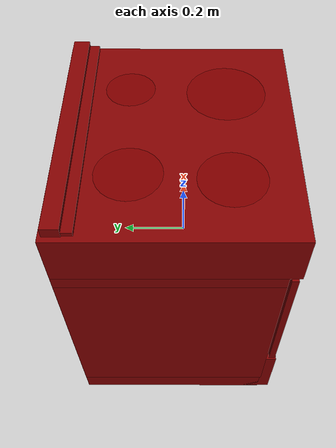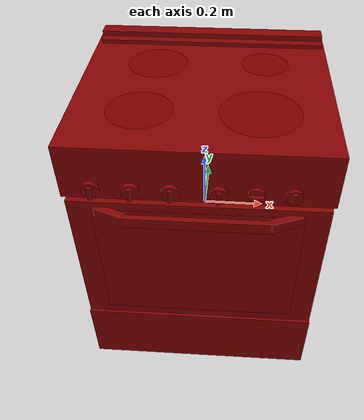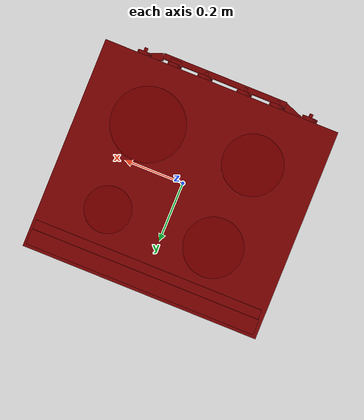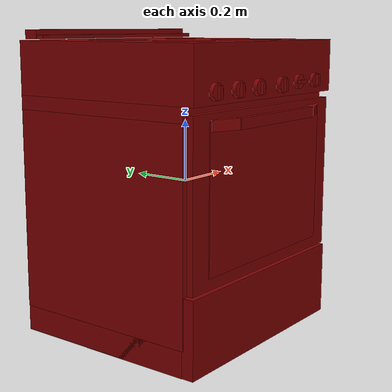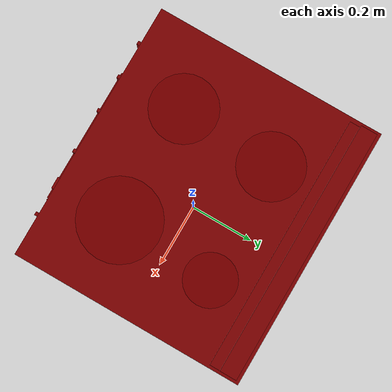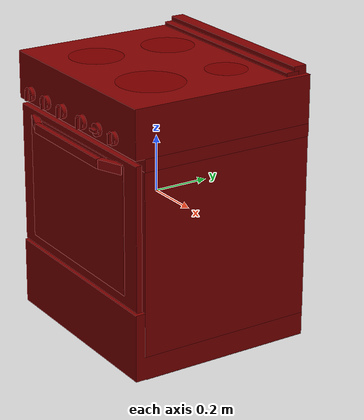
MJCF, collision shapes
<?xml version='1.0' encoding='UTF-8'?>
<mujoco model="model">
  <option timestep="0.002" gravity="0.0 0.0 -9.81"/>
  <compiler angle="radian"/>
  <asset>
    <mesh file="visuals/door.obj" name="door_vis"/>
    <mesh file="visuals/door_Clear.obj" name="door_Clear_vis"/>
    <mesh file="visuals/knob_front_left.obj" name="knob_front_left_vis"/>
    <mesh file="visuals/knob_front_right.obj" name="knob_front_right_vis"/>
    <mesh file="visuals/knob_rear_left.obj" name="knob_rear_left_vis"/>
    <mesh file="visuals/knob_rear_right.obj" name="knob_rear_right_vis"/>
    <mesh file="visuals/knob_temp.obj" name="knob_temp_vis"/>
    <mesh file="visuals/knob_time.obj" name="knob_time_vis"/>
    <mesh file="visuals/rack0.obj" name="rack0_vis"/>
    <mesh file="visuals/Body001.obj" name="Body001_vis"/>
    <texture file="visuals/T_BC001.png" name="Body001_material" type="2d"/>
    <material name="Body001_material" rgba="1 1 1 1.0" texture="Body001_material" shininess="0.1" specular="5"/>
    <texture file="visuals/T_BC001.png" name="door_material" type="2d"/>
    <material name="door_material" rgba="1 1 1 1.0" texture="door_material" shininess="0.1" specular="5"/>
    <material name="door_Clear_material" rgba="0.11236579716205597 0.11236579716205597 0.11236579716205597 0.8" shininess="0.4472135901451111" specular="0.3103448502657381"/>
    <texture file="visuals/T_BC001.png" name="knob_front_left_material" type="2d"/>
    <material name="knob_front_left_material" rgba="1 1 1 1.0" texture="knob_front_left_material" shininess="0.1" specular="5"/>
    <texture file="visuals/T_BC001.png" name="knob_front_right_material" type="2d"/>
    <material name="knob_front_right_material" rgba="1 1 1 1.0" texture="knob_front_right_material" shininess="0.1" specular="5"/>
    <texture file="visuals/T_BC001.png" name="knob_rear_left_material" type="2d"/>
    <material name="knob_rear_left_material" rgba="1 1 1 1.0" texture="knob_rear_left_material" shininess="0.1" specular="5"/>
    <texture file="visuals/T_BC001.png" name="knob_rear_right_material" type="2d"/>
    <material name="knob_rear_right_material" rgba="1 1 1 1.0" texture="knob_rear_right_material" shininess="0.1" specular="5"/>
    <texture file="visuals/T_BC001.png" name="knob_temp_material" type="2d"/>
    <material name="knob_temp_material" rgba="1 1 1 1.0" texture="knob_temp_material" shininess="0.1" specular="5"/>
    <texture file="visuals/T_BC001.png" name="knob_time_material" type="2d"/>
    <material name="knob_time_material" rgba="1 1 1 1.0" texture="knob_time_material" shininess="0.1" specular="5"/>
    <texture file="visuals/T_BC001.png" name="rack0_material" type="2d"/>
    <material name="rack0_material" rgba="1 1 1 1.0" texture="rack0_material" shininess="0.1" specular="5"/>
  </asset>
  <default>
    <default class="visual">
      <geom conaffinity="0" contype="0" group="1" type="mesh"/>
    </default>
    <default class="collision">
      <geom group="0" rgba="0.5 0 0 0.5"/>
    </default>
    <default class="spawn">
      <geom group="0" rgba="1 1 1 0.5" contype="0" conaffinity="0"/>
      <site group="0" rgba="1 1 1 0.5"/>
    </default>
    <default class="region">
      <geom group="1" conaffinity="0" contype="0" rgba="0 1 0 0"/>
    </default>
  </default>
  <worldbody>
    <body>
      <body name="object">
        <geom mesh="Body001_vis" type="mesh" solimp="0.998 0.998 0.001" solref="0.001 1" friction="0.95 0.3 0.1" class="visual" material="Body001_material"/>
        <geom class="collision" type="box" pos="-0.00029236997943371534 0.019169792532920837 0.37237340211868286" size="0.37908416986465454 0.33648955821990967 0.0846605896949768" quat="1.0 0.0 0.0 0.0"/>
        <geom class="collision" type="box" pos="-0.00029236997943371534 0.03675464168190956 0.26522576808929443" size="0.37908416986465454 0.31890466809272766 0.02249930612742901" quat="1.0 0.0 0.0 0.0"/>
        <geom class="collision" type="box" pos="-0.3586403429508209 0.03675464168190956 -0.08017957955598831" size="0.020736195147037506 0.31890466809272766 0.32331928610801697" quat="1.0 0.0 0.0 0.0"/>
        <geom class="collision" type="box" pos="0.35638871788978577 0.03675464168190956 -0.08017957955598831" size="0.02000848576426506 0.31890466809272766 0.32331928610801697" quat="1.0 0.0 0.0 0.0"/>
        <geom class="collision" type="box" pos="-3.012106753885746e-05 0.29214009642601013 -0.0793716236948967" size="0.35413306951522827 0.06351916491985321 0.32251134514808655" quat="1.0 0.0 0.0 0.0"/>
        <geom class="collision" type="box" pos="-0.001352792140096426 0.019630566239356995 -0.36553964018821716" size="0.3763732612133026 0.3365183472633362 0.12004053592681885" quat="1.0 0.0 0.0 0.0"/>
        <geom class="collision" type="box" pos="0.0019729507621377707 0.32042592763900757 0.475263386964798" size="0.3677079975605011 0.02409260906279087 0.014608011581003666" quat="1.0 0.0 0.0 0.0"/>
        <geom class="collision" type="box" pos="0.0030879739206284285 0.29076412320137024 0.4671143889427185" size="0.36659345030784607 0.02409263700246811 0.00645908247679472" quat="1.0 0.0 0.0 0.0"/>
        <geom class="collision" type="box" pos="0.3295269012451172 -0.02327657677233219 0.008062951266765594" size="0.005280005745589733 0.25722238421440125 0.005280005745589733" quat="1.0 0.0 0.0 0.0"/>
        <geom class="collision" type="box" pos="-0.33164557814598083 -0.02327657677233219 0.008062951266765594" size="0.005280005745589733 0.25722238421440125 0.005280005745589733" quat="1.0 0.0 0.0 0.0"/>
        <geom class="collision" type="box" pos="-0.001352792140096426 0.03916733339428902 -0.3575747013092041" size="0.3763732612133026 0.31698158383369446 0.12932536005973816" quat="1.0 0.0 0.0 0.0"/>
        <body name="door">
          <joint axis="1.0 0.0 0.0" pos="-3.955841020797379e-05 -0.3183262050151825 -0.23865897953510284" limited="true" name="door_joint" range="0.0 1.5707963267948966" type="hinge" damping="1" frictionloss="1" armature=".01" stiffness="0.05"/>
          <geom mesh="door_vis" type="mesh" solimp="0.998 0.998 0.001" solref="0.001 1" friction="0.95 0.3 0.1" class="visual" material="door_material"/>
          <geom class="collision" type="box" pos="-0.0008101159473881125 -0.3019765317440033 0.013922004029154778" size="0.37366747856140137 0.010360410436987877 0.25258105993270874" quat="1.0 0.0 0.0 0.0" name="door_main"/>
          <geom class="collision" type="box" pos="-0.0021934497635811567 -0.3471948206424713 0.23238277435302734" size="0.20576222240924835 0.008701863698661327 0.016437407582998276" quat="1.0 0.0 0.0 0.0" name="door_handle_main"/>
          <geom class="collision" type="box" pos="0.2474578619003296 -0.3263125419616699 0.23238277435302734" size="0.04739469289779663 0.01119912974536419 0.016437169164419174" quat="0.9820809364318848 0.0 0.0 0.1884595900774002" name="door_handle_Collider1"/>
          <geom class="collision" type="box" pos="-0.247494176030159 -0.3260935842990875 0.23238277435302734" size="0.04714091122150421 0.01119912974536419 0.016437169164419174" quat="1.9142196094890096e-07 0.9831273555755615 -0.18292252719402313 -3.5616331217624975e-08" name="door_handle_Collider2"/>
          <geom class="collision" type="box" pos="-0.00023322284687310457 -0.3160306513309479 0.021325405687093735" size="0.30270999670028687 0.001591252046637237 0.22306351363658905" quat="1.0 0.0 0.0 0.0"/>
          <body name="door_Clear">
            <geom mesh="door_Clear_vis" type="mesh" solimp="0.998 0.998 0.001" solref="0.001 1" friction="0.95 0.3 0.1" class="visual" material="door_Clear_material"/>
            <geom class="collision" type="box" pos="-0.00023322284687310457 -0.3160306513309479 0.021325405687093735" size="0.30270999670028687 0.001591252046637237 0.22306351363658905" quat="1.0 0.0 0.0 0.0"/>
          </body>
        </body>
        <body name="knob_front_left">
          <joint axis="0.0 -1.0 0.0" pos="-0.28917333483695984 -0.3214743733406067 0.3250948488712311" limited="true" name="knob_front_left_joint" range="0.0 3.4033920413889422" type="hinge" damping="0.05" frictionloss="0.75" armature="1"/>
          <geom mesh="knob_front_left_vis" type="mesh" solimp="0.998 0.998 0.001" solref="0.001 1" friction="0.95 0.3 0.1" class="visual" material="knob_front_left_material"/>
          <geom class="collision" type="cylinder" pos="-0.2892439663410187 -0.32711923122406006 0.3251371681690216" size="0.02481306903064251 0.007268550340086222" quat="0.7071067094802856 0.70710688829422 0.0 0.0" friction="100 0.5 0.01"/>
          <geom class="collision" type="box" pos="-0.28920984268188477 -0.3393794298171997 0.32416167855262756" size="0.005335498601198196 0.006057772785425186 0.019379813224077225" quat="1.0 0.0 0.0 0.0" name="knob_front_left_main" friction="100 0.5 0.01"/>
        </body>
        <body name="knob_front_right">
          <joint axis="0.0 -1.0 0.0" pos="0.058059342205524445 -0.3214743733406067 0.3250751495361328" limited="true" name="knob_front_right_joint" range="0.0 3.4033920413889422" type="hinge" damping="0.05" frictionloss="0.75" armature="1"/>
          <geom mesh="knob_front_right_vis" type="mesh" solimp="0.998 0.998 0.001" solref="0.001 1" friction="0.95 0.3 0.1" class="visual" material="knob_front_right_material"/>
          <geom class="collision" type="cylinder" pos="0.05804438889026642 -0.32711923122406006 0.3251371681690216" size="0.02481306903064251 0.007268550340086222" quat="0.7071067094802856 0.70710688829422 0.0 0.0" friction="100 0.5 0.01"/>
          <geom class="collision" type="box" pos="0.057761818170547485 -0.3393794298171997 0.32416167855262756" size="0.005335498601198196 0.006057772785425186 0.019379813224077225" quat="1.0 0.0 0.0 0.0" name="knob_front_right_main" friction="100 0.5 0.01"/>
        </body>
        <body name="knob_rear_left">
          <joint axis="0.0 -1.0 0.0" pos="-0.18045377731323242 -0.3214743733406067 0.3250948488712311" limited="true" name="knob_rear_left_joint" range="0.0 3.4033920413889422" type="hinge" damping="0.05" frictionloss="0.75" armature="1"/>
          <geom mesh="knob_rear_left_vis" type="mesh" solimp="0.998 0.998 0.001" solref="0.001 1" friction="0.95 0.3 0.1" class="visual" material="knob_rear_left_material"/>
          <geom class="collision" type="cylinder" pos="-0.1804448962211609 -0.32711923122406006 0.3251371681690216" size="0.02481306903064251 0.007268550340086222" quat="0.7071067094802856 0.70710688829422 0.0 0.0" friction="100 0.5 0.01"/>
          <geom class="collision" type="box" pos="-0.1805378645658493 -0.3393794298171997 0.32416167855262756" size="0.005335498601198196 0.006057772785425186 0.019379813224077225" quat="1.0 0.0 0.0 0.0" name="knob_rear_left_main" friction="100 0.5 0.01"/>
        </body>
        <body name="knob_rear_right">
          <joint axis="0.0 -1.0 0.0" pos="-0.07208241522312164 -0.3214743733406067 0.3250751495361328" limited="true" name="knob_rear_right_joint" range="0.0 3.4033920413889422" type="hinge" damping="0.05" frictionloss="0.75" armature="1"/>
          <geom mesh="knob_rear_right_vis" type="mesh" solimp="0.998 0.998 0.001" solref="0.001 1" friction="0.95 0.3 0.1" class="visual" material="knob_rear_right_material"/>
          <geom class="collision" type="cylinder" pos="-0.07212954014539719 -0.32711923122406006 0.3251371681690216" size="0.02481306903064251 0.007268550340086222" quat="0.7071067094802856 0.70710688829422 0.0 0.0" friction="100 0.5 0.01"/>
          <geom class="collision" type="box" pos="-0.07221609354019165 -0.3393794298171997 0.32416167855262756" size="0.005335498601198196 0.006057772785425186 0.019379813224077225" quat="1.0 0.0 0.0 0.0" name="knob_rear_right_main" friction="100 0.5 0.01"/>
        </body>
        <body name="knob_temp">
          <joint axis="0.0 1.0 0.0" pos="0.2586406171321869 -0.32153740525245667 0.32938167452812195" limited="true" name="knob_temp_joint" range="0.0 5.585053606381854" type="hinge" damping="0.05" armature="1" frictionloss="0.75"/>
          <geom mesh="knob_temp_vis" type="mesh" solimp="0.998 0.998 0.001" solref="0.001 1" friction="0.95 0.3 0.1" class="visual" material="knob_temp_material"/>
          <geom class="collision" type="cylinder" pos="0.25857654213905334 -0.3270561993122101 0.32952070236206055" size="0.022691307589411736 0.006290372461080551" quat="0.7071067094802856 0.70710688829422 0.0 0.0" friction="100 0.5 0.01"/>
          <geom class="collision" type="box" pos="0.2584940195083618 -0.3388645052909851 0.3310185372829437" size="0.005335498601198196 0.006057772785425186 0.01776191219687462" quat="1.0 0.0 0.0 0.0" name="knob_temp_main" friction="100 0.5 0.01"/>
        </body>
        <body name="knob_time">
          <joint axis="0.0 1.0 0.0" pos="0.15891048312187195 -0.32153740525245667 0.32938167452812195" limited="true" name="knob_time_joint" range="0.0 5.235987755982989" type="hinge" damping="0.05" armature="1" frictionloss="0.75"/>
          <geom mesh="knob_time_vis" type="mesh" solimp="0.998 0.998 0.001" solref="0.001 1" friction="0.95 0.3 0.1" class="visual" material="knob_time_material"/>
          <geom class="collision" type="cylinder" pos="0.15881851315498352 -0.3270561993122101 0.32952070236206055" size="0.022691307589411736 0.006290372461080551" quat="0.7071067094802856 0.70710688829422 0.0 0.0" friction="100 0.5 0.01"/>
          <geom class="collision" type="box" pos="0.15931719541549683 -0.3388645052909851 0.32946375012397766" size="0.01776191219687462 0.006057772785425186 0.005335499998182058" quat="1.0 0.0 0.0 0.0" name="knob_time_main" friction="100 0.5 0.01"/>
        </body>
        <body name="rack0">
          <geom class="region" name="reg_rack0" type="box" pos="-0.0006475001573562622 -0.001109287142753601 0.1326213674619794" size="0.3329789320230484 0.2063593248128891 0.10607650207728148"/>
          <joint axis="0.0 -1.0 0.0" pos="-0.0006190836429595947 -0.0014598965644836426 0.01777859590947628" limited="true" name="rack0_joint" range="0.0 0.35" type="slide" damping="1" frictionloss="1" armature=".01" stiffness="0.05"/>
          <geom mesh="rack0_vis" type="mesh" solimp="0.998 0.998 0.001" solref="0.001 1" friction="0.95 0.3 0.1" class="visual" material="rack0_material"/>
          <geom class="collision" type="box" pos="-0.0008412456372752786 -0.0012574363499879837 0.01769321784377098" size="0.33493512868881226 0.21117152273654938 0.003841714933514595" quat="1.0 0.0 0.0 0.0"/>
        </body>
        <geom class="region" name="reg_int" type="box" pos="-0.0006475001573562622 -0.027510404586791992 0.007576249539852142" size="0.3329789320230484 0.25132997131347656 0.23112161999940872"/>
        <site type="cylinder" rgba="0.5 0 0 0.5" size="0.09416384249925613 0.0001" pos="-0.15830343961715698 0.14642590284347534 0.4570840001106262" name="burner_on_rear_left"/>
        <site type="cylinder" rgba="0.5 0 0 0.5" size="0.09578923135995865 0.0001" pos="-0.17578695714473724 -0.12951138615608215 0.4570840001106262" name="burner_on_front_left"/>
        <site type="cylinder" rgba="0.5 0 0 0.5" size="0.1171400398015976 0.0001" pos="0.16372962296009064 -0.12572431564331055 0.4570840001106262" name="burner_on_front_right"/>
        <site type="cylinder" rgba="0.5 0 0 0.5" size="0.07373140007257462 0.0001" pos="0.1803385317325592 0.1582910567522049 0.4570840001106262" name="burner_on_rear_right"/>
        <site name="burner_rear_left_place_site" type="cylinder" rgba="0.5 0 0 0" size="0.09416384249925613 4.999999873689376e-05" pos="-0.15830343961715698 0.14642590284347534 0.4570840001106262"/>
        <site name="burner_front_left_place_site" type="cylinder" rgba="0.5 0 0 0" size="0.09578923135995865 4.999999873689376e-05" pos="-0.17578695714473724 -0.12951138615608215 0.4570840001106262"/>
        <site name="burner_front_right_place_site" type="cylinder" rgba="0.5 0 0 0" size="0.1171400398015976 4.999999873689376e-05" pos="0.16372962296009064 -0.12572431564331055 0.4570840001106262"/>
        <site name="burner_rear_right_place_site" type="cylinder" rgba="0.5 0 0 0" size="0.07373140007257462 4.999999873689376e-05" pos="0.1803385317325592 0.1582910567522049 0.4570840001106262"/>
        <geom class="region" name="reg_main" type="box" pos="-7.450580596923828e-09 0.019144684076309204 -0.013438642024993896" size="0.380707396030426 0.33847079968452454 0.47630001401901245"/>
      </body>
    </body>
  </worldbody>
  <actuator>
    <motor name="door_joint_actuator" joint="door_joint" gear="50"/>
    <motor name="knob_front_left_joint_actuator" joint="knob_front_left_joint" gear="50"/>
    <motor name="knob_front_right_joint_actuator" joint="knob_front_right_joint" gear="50"/>
    <motor name="knob_rear_left_joint_actuator" joint="knob_rear_left_joint" gear="50"/>
    <motor name="knob_rear_right_joint_actuator" joint="knob_rear_right_joint" gear="50"/>
    <motor name="knob_temp_joint_actuator" joint="knob_temp_joint" gear="50"/>
    <motor name="knob_time_joint_actuator" joint="knob_time_joint" gear="50"/>
    <motor name="rack0_joint_actuator" joint="rack0_joint" gear="50"/>
  </actuator>
</mujoco>
